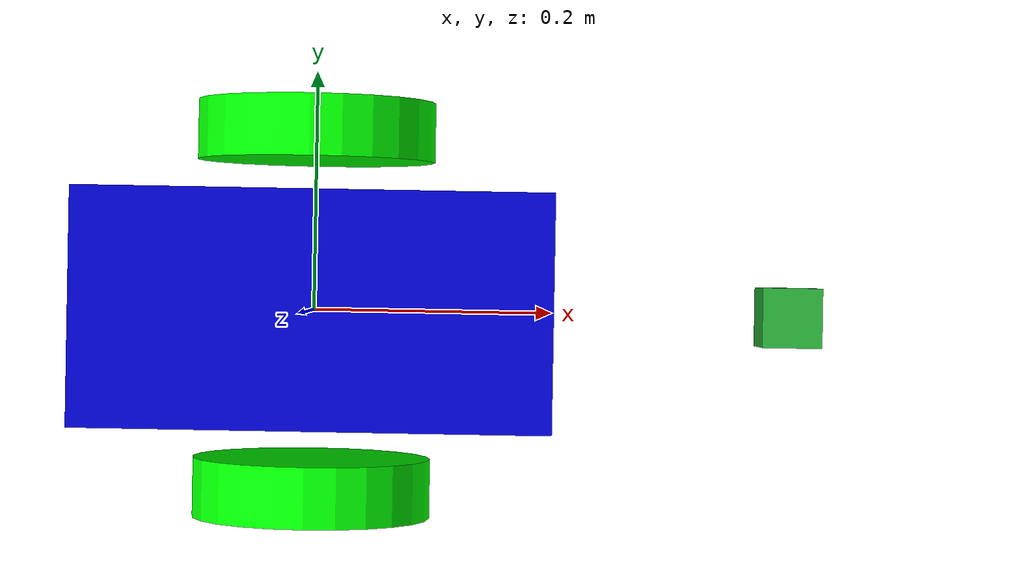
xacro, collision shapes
<?xml version='1.0'?>

<robot name="slam_project" xmlns:xacro="http://www.ros.org/wiki/xacro">

<material name="blue">
    <color rgba="0 0 0.8 1"/>
  </material>

<material name="green">
    <color rgba="0 1 0 1"/>
  </material>
<xacro:include filename="$(find slam_project)/urdf/udacity_bot.gazebo" />

  <link name="robot_footprint"></link>

  <joint name="robot_footprint_joint" type="fixed">
    <origin xyz="0 0 0" rpy="0 0 0" />
    <parent link="robot_footprint"/>
    <child link="chassis" />
  </joint>

  <link name='chassis'>
    <pose>0 0 0.1 0 0 0</pose>

    <inertial>
      <mass value="15.0"/>
      <origin xyz="0.0 0 0" rpy=" 0 0 0"/>
      <inertia
          ixx="0.1" ixy="0" ixz="0"
          iyy="0.1" iyz="0"
          izz="0.1"
      />
    </inertial>

    <collision name='collision'>
      <origin xyz="0 0 0" rpy=" 0 0 0"/>
      <geometry>
        <box size=".4 .2 .1"/>
      </geometry>
    </collision>

    <visual name='chassis_visual'>
      <origin xyz="0 0 0" rpy=" 0 0 0"/>
      <geometry>
        <box size=".4 .2 .1"/>
      </geometry>
<material name="blue"/>
    </visual>

    <collision name='back_caster_collision'>
      <origin xyz="-0.15 0 -0.05" rpy=" 0 0 0"/>
      <geometry>
        <sphere radius="0.0499"/>
      </geometry>
    </collision>

    <visual name='back_caster_visual'>
      <origin xyz="-0.15 0 -0.05" rpy=" 0 0 0"/>
      <geometry>
        <sphere radius="0.05"/>
      </geometry>
    </visual>

    <collision name='front_caster_collision'>
      <origin xyz="0.15 0 -0.05" rpy=" 0 0 0"/>
      <geometry>
        <sphere radius="0.0499"/>
      </geometry>
    </collision>

    <visual name='front_caster_visual'>
      <origin xyz="0.15 0 -0.05" rpy=" 0 0 0"/>
      <geometry>
        <sphere radius="0.05"/>
      </geometry>
    </visual>

  </link>

<link name="left_wheel">
    <collision name="collision">
	 	<origin xyz="0 0 0" rpy="0 1.5707 1.5707"/>
          <geometry>
            <cylinder length="0.05" radius="0.1"/>
          </geometry>
        </collision>
        <visual name="visual">
	<origin xyz="0 0 0" rpy="0 1.5707 1.5707"/>
          <geometry>
            <cylinder length="0.05" radius="0.1"/>
          </geometry>
	<material name="green"/>
        </visual>
	<inertial>
     <origin xyz="0 0 0" rpy="0 1.5707 1.5707"/>
     <mass value="5"/>
     <inertia ixx=".1"  ixy="0"  ixz="0" iyy=".1" iyz="0" izz=".1" />
   </inertial>
 </link>

  <joint type="continuous" name="left_wheel_hinge">
    <origin xyz="0 0.15 0" rpy="0 0 0"/>
    <child link="left_wheel"/>
    <parent link="chassis"/>
    <axis xyz="0 1 0" />
    <limit effort="10000" velocity="1000"/>
    <joint_properties damping="1.0" friction="1.0"/>
  </joint>

<link name="right_wheel">
    <collision name="collision">
	 	<origin xyz="0 0 0" rpy="0 1.5707 1.5707"/>
          <geometry>
            <cylinder length="0.05" radius="0.1"/>
          </geometry>
        </collision>
        <visual name="visual">
	<origin xyz="0 0 0" rpy="0 1.5707 1.5707"/>
          <geometry>
            <cylinder length="0.05" radius="0.1"/>
          </geometry>
	<material name="green"/>
        </visual>
	<inertial>
     <origin xyz="0 0 0" rpy="0 1.5707 1.5707"/>
     <mass value="5"/>
     <inertia ixx=".1"  ixy="0"  ixz="0" iyy=".1" iyz="0" izz=".1" />
   </inertial>
 </link>

  <joint type="continuous" name="right_wheel_hinge">
    <origin xyz="0 -0.15 0" rpy="0 0 0"/>
    <child link="right_wheel"/>
    <parent link="chassis"/>
    <axis xyz="0 1 0" />
    <limit effort="10000" velocity="1000"/>
    <joint_properties damping="1.0" friction="1.0"/>
  </joint>

<link name ="camera">
<origin xyz="0 0 0" rpy="0 0 0"/>
<collision>
<origin xyz="0.2 0 0" rpy="0 0 0"/>
<geometry>
<box size="0.05 0.05 0.05"/>
</geometry>
</collision>
<visual name="visual">
        <geometry>
         <mesh filename="package://slam_project/meshes/kinect.dae"/>
        </geometry>
</visual>
<inertial>
     <mass value="0.1"/>
     <inertia ixx="1e-6"  ixy="0"  ixz="0" iyy="1e-6" iyz="0" izz="1e-6"/>
 </inertial>
</link>

<joint type="fixed" name="camera_joint">
<origin xyz="0.2 0 0" rpy="0 0 0"/>
<child link="camera"/>
<parent link="chassis"/>
</joint>

<joint type="fixed" name="camera_optical_joint">
<origin xyz="0 0 0" rpy="${-pi/2} 0 ${-pi/2}"/>
<parent link="camera"/>
<child link="camera_link_optical"/>
</joint>

<link name="camera_link_optical"/>

<link name="hokuyo">
<origin xyz="0 0 0" rpy="0 0 0"/>
 <collision name="collision">
	 	<origin xyz="0 0 0" rpy="0 1.5707 1.5707"/>
          <geometry>
		<box size="0.1 0 0"/>
          </geometry>
   </collision>

<visual>
	<geometry>
	 <mesh filename="package://slam_project/meshes/hokuyo.dae"/>
	</geometry>
</visual>
<inertial>
     <mass value=".1"/>
     <inertia ixx="1e-6"  ixy="0"  ixz="0" iyy="1e-6" iyz="0" izz="1e-6"/>
 </inertial>
</link>

<joint type="fixed" name="hokuyo_joint">
<origin xyz="0.15 0 0.1" rpy="0 0 0"/>
<child link="hokuyo"/>
<parent link="chassis"/>
</joint>

</robot>
